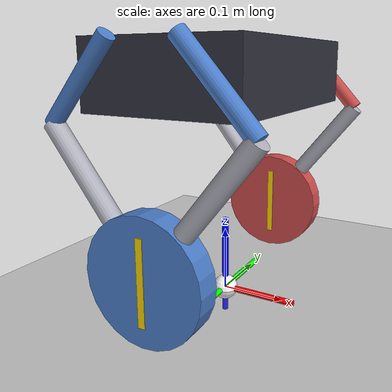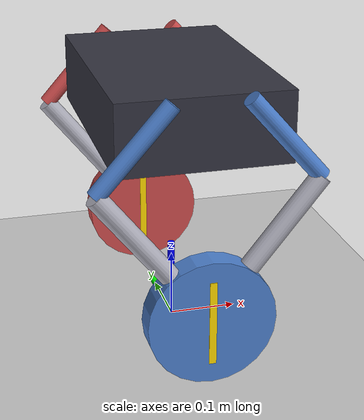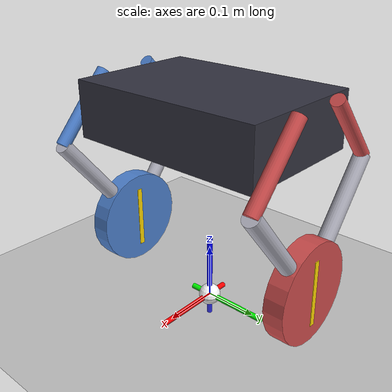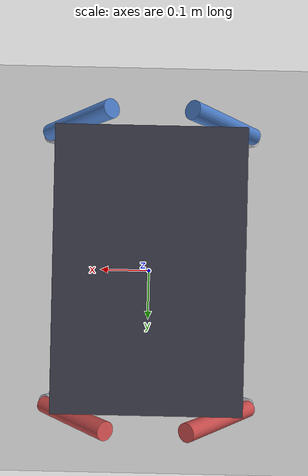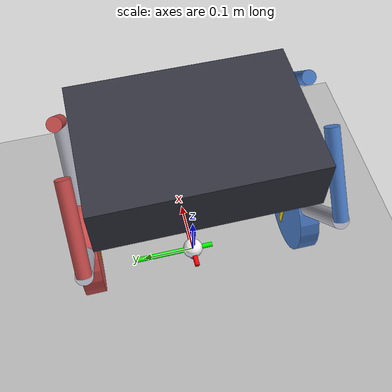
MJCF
<?xml version="1.0" encoding="utf-8"?>
<!--
  菱形 5 连杆几何替身版的 env：复用 MJCF/env.xml 的世界设定（地面、坐标轴、光照），
  只把 include 的机器人文件换成 robot_rhombus.xml。
  与原 env 区别仅在机器人本体几何，地面、皮肤、相机等保持一致。
-->
<mujoco model="inverted_pendulum_rhombus">
    <compiler angle="radian" autolimits="true" />
    <option timestep="0.001" gravity="0 0 -9.81" integrator="implicitfast" density="1.225"
        viscosity="1.8e-5" />

    <visual>
        <global realtime="1" />
        <quality shadowsize="16384" numslices="28" offsamples="4" />
        <headlight diffuse="0.5 0.5 0.5" specular="0.2 0.2 0.2" active="1" />
    </visual>
    <include file="robot_rhombus.xml"/>

    <asset>
        <texture type="skybox" file="../MJCF/desert.png"
            gridsize="3 4" gridlayout=".U..LFRB.D.." />
        <texture name="plane" type="2d" builtin="checker" rgb1=".1 .1 .1" rgb2=".9 .9 .9"
            width="512" height="512" mark="cross" markrgb=".8 .8 .8" />
        <material name="plane" reflectance="0.3" texture="plane" texrepeat="1 1" texuniform="true"/>
    </asset>

    <worldbody>
        <geom name="floor" pos="0 0 0" size="0 0 .25" type="plane" material="plane" condim="3" />

        <site name="x_axis_cylinder" type="cylinder" size="0.005 0.08" pos="0.04 0 0"
              axisangle="0 1 0 1.57" rgba="1 0 0 1"/>
        <site name="y_axis_cylinder" type="cylinder" size="0.005 0.08" pos="0 0.04 0"
              axisangle="1 0 0 -1.57" rgba="0 1 0 1"/>
        <site name="z_axis_cylinder" type="cylinder" size="0.005 0.08" pos="0 0 0.04"
              rgba="0 0 1 1"/>
        <site name="origin" type="sphere" size="0.02" rgba="1 1 1 1"/>

        <light directional="true" ambient=".15 .15 .15" pos="30 30 30" dir="0 -.5 -1"
            diffuse=".3 .3 .3" specular=".3 .3 .3" />
    </worldbody>
</mujoco>

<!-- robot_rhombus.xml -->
<mujoco model="GBC486_rhombus">
  <default>
    <default class="touch">
        <geom contype="1" conaffinity="1" />
    </default>
    <default class="untouch">
        <geom contype="0" conaffinity="0" />
    </default>
  </default>
  <compiler angle="radian"/>

  <asset>
    <material name="base_mat" rgba="0.2 0.2 0.25 1" specular="0.5" shininess="0.5"/>
    <material name="arm_blue" rgba="0.3 0.5 0.8 1" specular="0.8" shininess="0.8"/>
    <material name="arm_red"  rgba="0.8 0.3 0.3 1" specular="0.8" shininess="0.8"/>
    <material name="joint_mat" rgba="0.7 0.7 0.75 1" specular="1.0" shininess="1.0"/>
    <material name="wheel_mat" rgba="0.15 0.15 0.2 1" specular="0.3" shininess="0.2"/>
  </asset>

  <worldbody>
    <body name="base" pos="0 0 0.30">
    <!-- "扣雷挖及悠打"，注释下面这行代码可以让车身悬浮在空中 -->
      <joint name="base_free" type="free"/>
      <site name="imu" type="box" size="0.002 0.002 0.002" rgba="1 1 0 1"/>
      <geom name="base_box" type="box" size="0.12 0.18 0.05" pos="0 0 0.05"
            material="base_mat" class="touch" mass="8.4"/>

      <!-- ============ 右腿（蓝色系），rear: AG → GH → wheel_right ============ -->
      <body name="AG" pos="-0.05 -0.20 0.10" quat="0.707105 0.707108 0 0">
        <joint name="jAG" pos="0 0 0" axis="0 0 1" range="-1.57 1.57"/>
        <!-- upper-rear 杆：从 hip 沿 (−0.0995, −0.11225, 0) 指向 knee G，长 0.15 -->
        <geom type="cylinder" fromto="0 0 0  -0.0995 -0.11225 0" size="0.012"
              material="arm_blue" class="untouch" mass="0.5"/>

        <body name="GH" pos="-0.0995 -0.11225 0">
          <joint name="jGH" pos="0 0 0" axis="0 0 1" range="-2.5 2.5"/>
          <!-- lower-rear 杆：从 knee 沿 (0.1495, −0.18775, 0) 指向 foot F，长 0.24 -->
          <geom type="cylinder" fromto="0 0 0  0.1495 -0.18775 0" size="0.014"
                material="joint_mat" class="touch" mass="1.0"/>
          <site name="GH-F" pos="0.1495 -0.18775 0" size="0.004" rgba="0 1 0 1"/>

          <body name="wheel_right" pos="0.1495 -0.18775 0">
            <joint name="jwheel_right" pos="0 0 0" axis="0 0 -1"/>
            <geom type="cylinder" size="0.088 0.018" material="arm_blue"
                  class="touch" mass="0.322"/>
            <geom type="box" size="0.005 0.06 0.019" pos="0 0 0"
                  rgba="1 0.85 0 1" class="untouch" mass="0.001"/>
          </body>
        </body>
      </body>

      <!-- ============ 右腿（蓝色系），front: AB → BE → F (闭环到 GH-F) ============ -->
      <body name="AB" pos="0.05 -0.20 0.10" quat="0.707105 0.707108 0 0">
        <joint name="jAB" pos="0 0 0" axis="0 0 1" range="-1.57 1.57"/>
        <!-- upper-front 杆：从 hip 沿 (0.0995, −0.11225, 0) 指向 knee B，长 0.15 -->
        <geom type="cylinder" fromto="0 0 0  0.0995 -0.11225 0" size="0.012"
              material="arm_blue" class="untouch" mass="0.5"/>

        <body name="BE" pos="0.0995 -0.11225 0">
          <joint name="jBE" pos="0 0 0" axis="0 0 1"/>
          <!-- lower-front 杆：从 knee 沿 (−0.1495, −0.18775, 0) 指向 foot F，长 0.24 -->
          <geom type="cylinder" fromto="0 0 0  -0.1495 -0.18775 0" size="0.014"
                material="joint_mat" class="touch" mass="1.0"/>
          <site name="BE-F" pos="-0.1495 -0.18775 0" size="0.004" rgba="0 1 0 1"/>
        </body>
      </body>

      <!-- ============ 左腿（红色系），rear: IO → OP → wheel_left ============ -->
      <body name="IO" pos="-0.05 0.20 0.10" quat="0.707105 0.707108 0 0">
        <joint name="jIO" pos="0 0 0" axis="0 0 -1" range="-1.57 1.57"/>
        <geom type="cylinder" fromto="0 0 0  -0.0995 -0.11225 0" size="0.012"
              material="arm_red" class="untouch" mass="0.5"/>

        <body name="OP" pos="-0.0995 -0.11225 0">
          <joint name="jOP" pos="0 0 0" axis="0 0 -1" range="-2.5 2.5"/>
          <geom type="cylinder" fromto="0 0 0  0.1495 -0.18775 0" size="0.014"
                material="joint_mat" class="touch" mass="1.0"/>
          <site name="OP-F" pos="0.1495 -0.18775 0" size="0.004" rgba="1 0 0 1"/>

          <body name="wheel_left" pos="0.1495 -0.18775 0">
            <joint name="jwheel_left" pos="0 0 0" axis="0 0 1"/>
            <geom type="cylinder" size="0.088 0.018" material="arm_red"
                  class="touch" mass="0.322"/>
            <geom type="box" size="0.005 0.06 0.019" pos="0 0 0"
                  rgba="1 0.85 0 1" class="untouch" mass="0.001"/>
          </body>
        </body>
      </body>

      <!-- ============ 左腿（红色系），front: IJ → JM → F (闭环到 OP-F) ============ -->
      <body name="IJ" pos="0.05 0.20 0.10" quat="0.707105 0.707108 0 0">
        <joint name="jIJ" pos="0 0 0" axis="0 0 -1" range="-1.57 1.57"/>
        <geom type="cylinder" fromto="0 0 0  0.0995 -0.11225 0" size="0.012"
              material="arm_red" class="untouch" mass="0.5"/>

        <body name="JM" pos="0.0995 -0.11225 0">
          <joint name="jJM" pos="0 0 0" axis="0 0 -1"/>
          <geom type="cylinder" fromto="0 0 0  -0.1495 -0.18775 0" size="0.014"
                material="joint_mat" class="touch" mass="1.0"/>
          <site name="JM-F" pos="-0.1495 -0.18775 0" size="0.004" rgba="1 0 0 1"/>
        </body>
      </body>
    </body>
  </worldbody>

  <equality>
    <!-- 闭环：上下两条支链在 foot/wheel 位置合拢 -->
    <connect name="right_F" site1="BE-F" site2="GH-F" solref="0.001 1" solimp="0.99 0.99 0.01 0.5 2"/>
    <connect name="left_F"  site1="JM-F" site2="OP-F" solref="0.001 1" solimp="0.99 0.99 0.01 0.5 2"/>
  </equality>

  <actuator>
    <general name="Right_front_joint_act" joint="jAB"          gainprm="1"  ctrlrange="-20 +20"/>
    <general name="Right_rear_joint_act"  joint="jAG"          gainprm="1"  ctrlrange="-20 +20"/>
    <general name="Left_front_joint_act"  joint="jIJ"          gainprm="1"  ctrlrange="-20 +20"/>
    <general name="Left_rear_joint_act"   joint="jIO"          gainprm="1"  ctrlrange="-20 +20"/>
    <general name="Right_Wheel_act"       joint="jwheel_right" gainprm="1"  ctrlrange="-4 +4"/>
    <general name="Left_Wheel_act"        joint="jwheel_left"  gainprm="-1" ctrlrange="-4 +4"/>
  </actuator>

  <sensor>
    <framequat name='orientation' objtype='site' objname='imu'/>
    <gyro      name='gyro'        site='imu'/>
    <jointpos joint="jwheel_right" name="Right_Wheel_pos"/>
    <jointpos joint="jwheel_left"  name="Left_Wheel_pos"/>
    <jointpos joint="jAB" name="Right_front_joint_pos"/>
    <jointpos joint="jAG" name="Right_rear_joint_pos"/>
    <jointpos joint="jIJ" name="Left_front_joint_pos"/>
    <jointpos joint="jIO" name="Left_rear_joint_pos"/>
  </sensor>
</mujoco>
